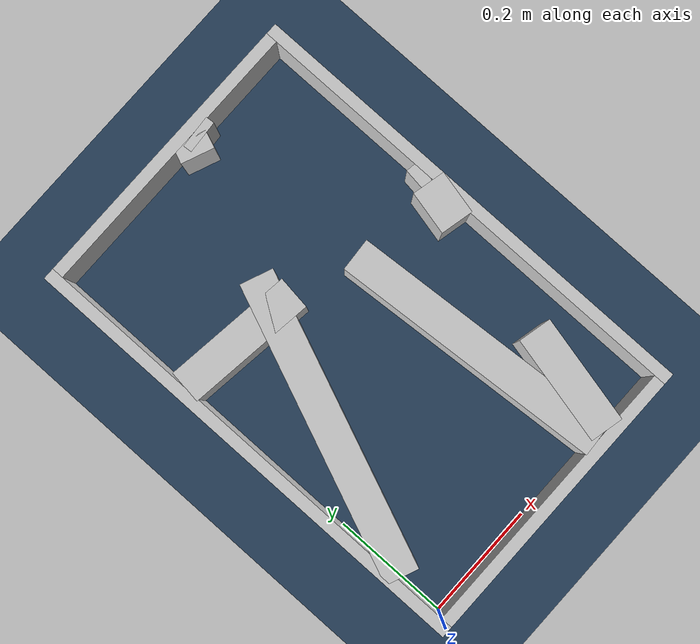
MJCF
<?xml version="1.0" ?>
<mujoco model="generated_real_template">
  <compiler angle="degree"/>
  <option timestep="0.002" integrator="implicitfast" iterations="100" cone="elliptic"/>
  <default>
    <geom density="1"/>
  </default>
  <asset>
    <texture builtin="gradient" height="3072" rgb1="0.3 0.5 0.7" rgb2="0 0 0" type="skybox" width="512"/>
    <texture builtin="checker" height="300" mark="edge" markrgb="0.8 0.8 0.8" name="groundplane" rgb1="0.2 0.3 0.4" rgb2="0.1 0.2 0.3" type="2d" width="300"/>
    <material name="groundplane" reflectance="0.2" texrepeat="5 5" texture="groundplane" texuniform="true"/>
  </asset>
  <worldbody>
    <light dir="0 0 -1" directional="true" pos="0 0 1.5"/>
    <geom name="floor" type="plane" condim="4" friction="0.5 0.005 0.001" material="groundplane" size="0 0 0.05"/>
    <body name="walls">
      <geom name="wall_boundary_left" type="box" condim="4" friction="1.0 0.005 0.0001" rgba="0.8 0.8 0.8 1" pos="-0.010000 0.387500 0.050000" euler="0 0 0.000000" size="0.010000 0.407500 0.050000"/>
      <geom name="wall_boundary_right" type="box" condim="4" friction="1.0 0.005 0.0001" rgba="0.8 0.8 0.8 1" pos="0.500000 0.387500 0.050000" euler="0 0 0.000000" size="0.010000 0.407500 0.050000"/>
      <geom name="wall_boundary_bottom" type="box" condim="4" friction="1.0 0.005 0.0001" rgba="0.8 0.8 0.8 1" pos="0.245000 -0.010000 0.050000" euler="0 0 0.000000" size="0.245000 0.010000 0.050000"/>
      <geom name="wall_boundary_top" type="box" condim="4" friction="1.0 0.005 0.0001" rgba="0.8 0.8 0.8 1" pos="0.245000 0.785000 0.050000" euler="0 0 0.000000" size="0.245000 0.010000 0.050000"/>
      <geom name="wall_inner_1_1" type="box" condim="4" friction="1.0 0.005 0.0001" rgba="0.8 0.8 0.8 1" pos="0.282672 0.760751 0.050000" euler="0 0 -112.245654" size="0.015394 0.028500 0.050000"/>
      <geom name="wall_inner_1_2" type="box" condim="4" friction="1.0 0.005 0.0001" rgba="0.8 0.8 0.8 1" pos="0.102383 0.319972 0.050000" euler="0 0 -112.245654" size="0.253588 0.028500 0.050000"/>
      <geom name="wall_inner_2_1" type="box" condim="4" friction="1.0 0.005 0.0001" rgba="0.8 0.8 0.8 1" pos="0.480047 0.461337 0.050000" euler="0 0 172.728241" size="0.010033 0.028500 0.050000"/>
      <geom name="wall_inner_2_2" type="box" condim="4" friction="1.0 0.005 0.0001" rgba="0.8 0.8 0.8 1" pos="0.109335 0.508641 0.050000" euler="0 0 172.728241" size="0.110221 0.028500 0.050000"/>
      <geom name="wall_inner_3_1" type="box" condim="4" friction="1.0 0.005 0.0001" rgba="0.8 0.8 0.8 1" pos="0.341477 0.232022 0.050000" euler="0 0 94.123062" size="0.232624 0.028500 0.050000"/>
      <geom name="wall_inner_3_2" type="box" condim="4" friction="1.0 0.005 0.0001" rgba="0.8 0.8 0.8 1" pos="0.302874 0.767539 0.050000" euler="0 0 94.123062" size="0.007480 0.028500 0.050000"/>
      <geom name="wall_inner_4_1" type="box" condim="4" friction="1.0 0.005 0.0001" rgba="0.8 0.8 0.8 1" pos="0.399925 0.091263 0.050000" euler="0 0 77.208730" size="0.093585 0.028500 0.050000"/>
      <geom name="wall_inner_4_2" type="box" condim="4" friction="1.0 0.005 0.0001" rgba="0.8 0.8 0.8 1" pos="0.473841 0.416835 0.050000" euler="0 0 77.208730" size="0.037785 0.028500 0.050000"/>
    </body>
  </worldbody>
</mujoco>
